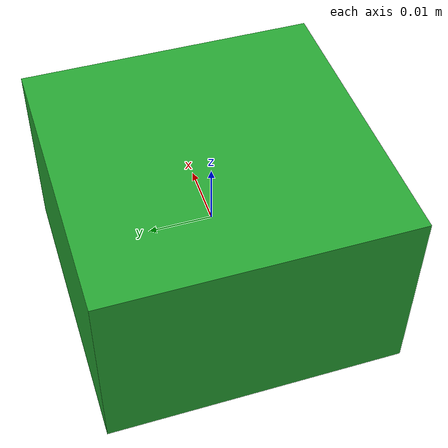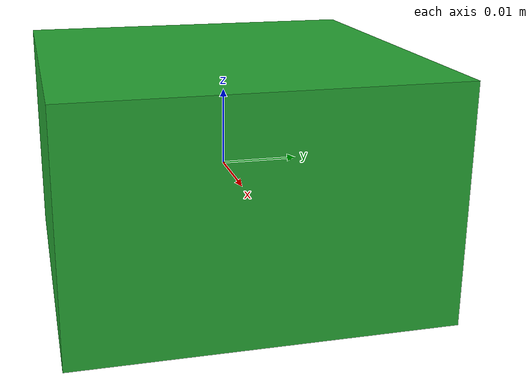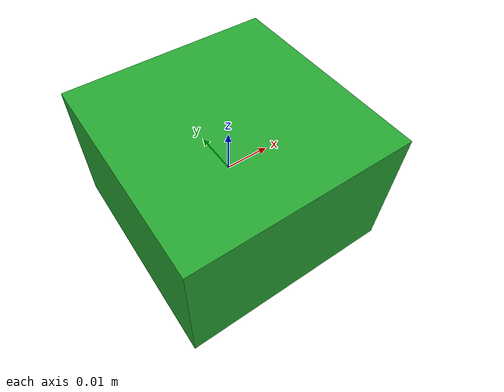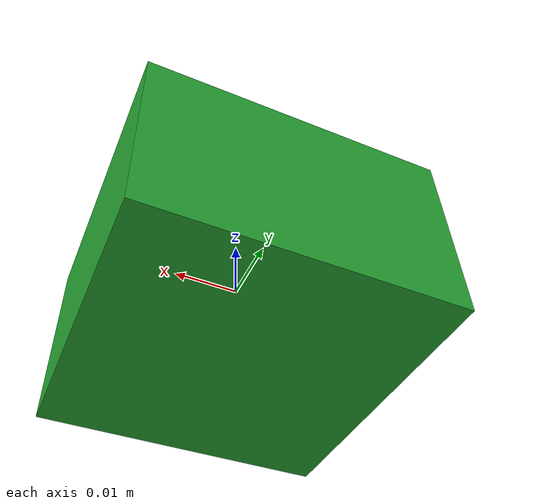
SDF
<sdf version='1.6'>
  <model name='cover'>
    <link name='base_link'>
      <pose frame=''>0 0 0 0 -0 0</pose>
      <inertial>
        <pose frame=''>0 0 0 0 -0 0</pose>
        <mass>0.3</mass>
      </inertial>
      <collision name='base_link_collision'>
        <pose frame=''>0 0 0 0 -0 0</pose>
        <geometry>
          <box>
            <size>0.047 0.047 0.03</size>
          </box>
        </geometry>
        <surface>
          <friction>
            <ode>
              <mu>5.0</mu>
              <mu2>5.0</mu2>
            </ode>
          </friction>
        </surface>
      </collision>
      <visual name='base_link_visual'>
        <pose frame=''>0 0 0 0 -0 0</pose>
        <geometry>
          <box>
            <size>0.047 0.047 0.03</size>
          </box>
        </geometry>
        <material>
          <script>
            <name>Gazebo/Green</name>
            <uri>file://media/materials/scripts/gazebo.material</uri>
          </script>
        </material>
      </visual>
    </link>
  </model>
</sdf>
